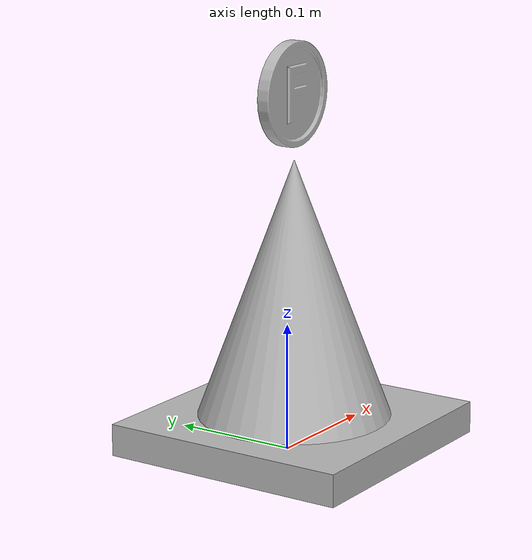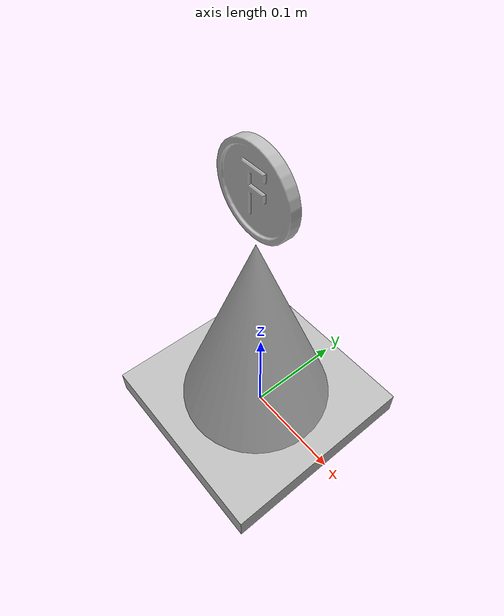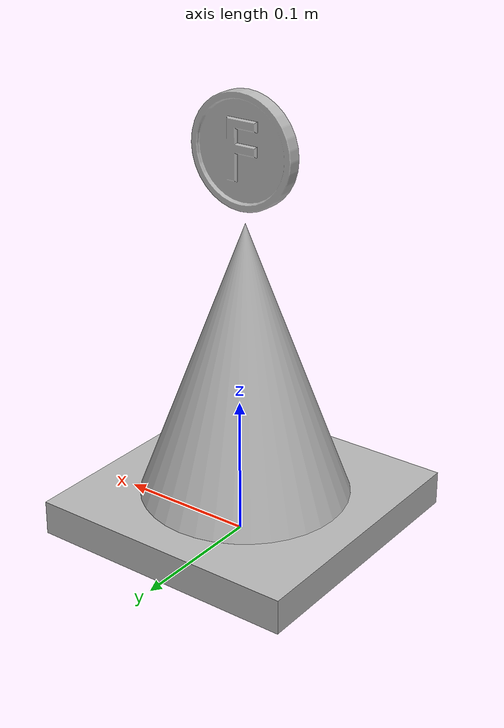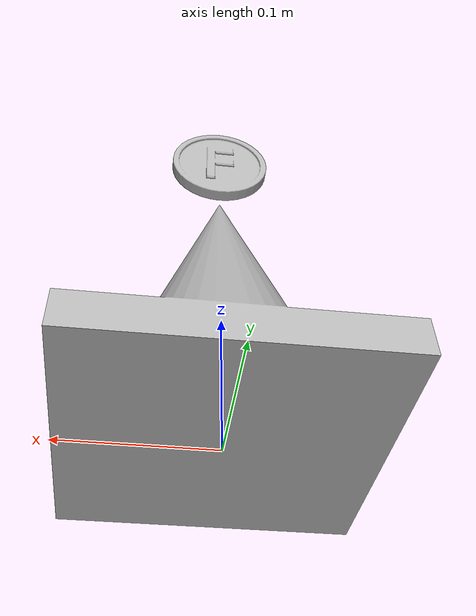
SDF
<?xml version="1.0" ?>
<sdf version="1.4">
  <model name="cone_F">
    <static>true</static>
    <link name="link">
      <inertial>
        <pose>0 0 0 0 0 0</pose>
        <mass>1</mass>
        <inertia>
          <ixx>0.00055575</ixx>
          <ixy>0</ixy>
          <ixz>0</ixz>
          <iyy>0.00055575</iyy>
          <iyz>0</iyz>
          <izz>0.0001755</izz>
        </inertia>
      </inertial>
      <collision name="collision">
        <pose>0 0 0 0 0 0</pose>
        <geometry>
          <mesh>
            <uri>model://sankaku_cone_F/meshes/cone_with_coin_F.dae</uri>
            <scale>0.5 0.5 0.5</scale>
          </mesh>
        </geometry>
      </collision>
      <visual name="visual">
        <pose>0 0 0 0 0 0</pose>
        <geometry>
          <mesh>
            <uri>model://sankaku_cone_F/meshes/cone_with_coin_F.dae</uri>
           <scale>0.5 0.5 0.5</scale>
          </mesh>
        </geometry>
      </visual>
    </link>
  </model>
</sdf>
